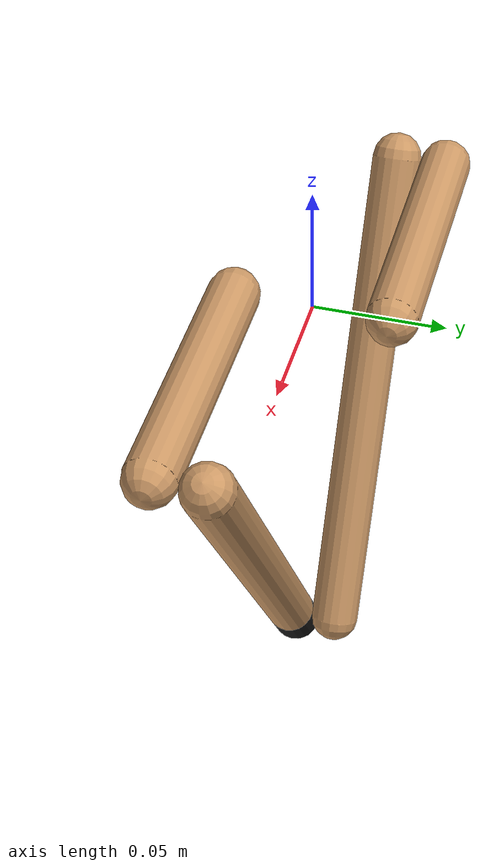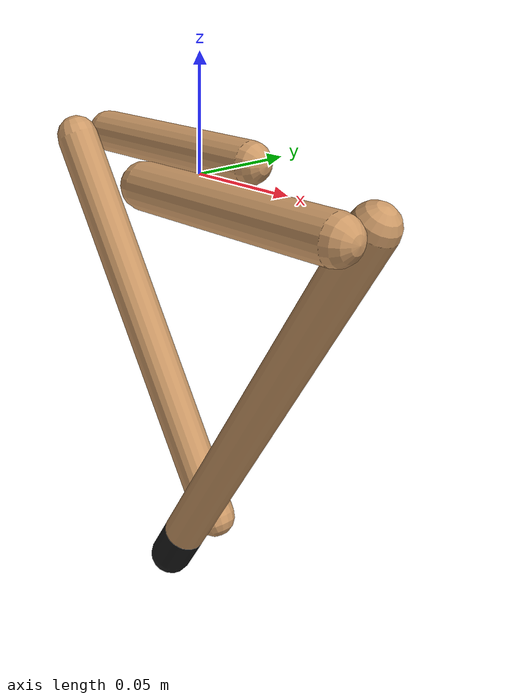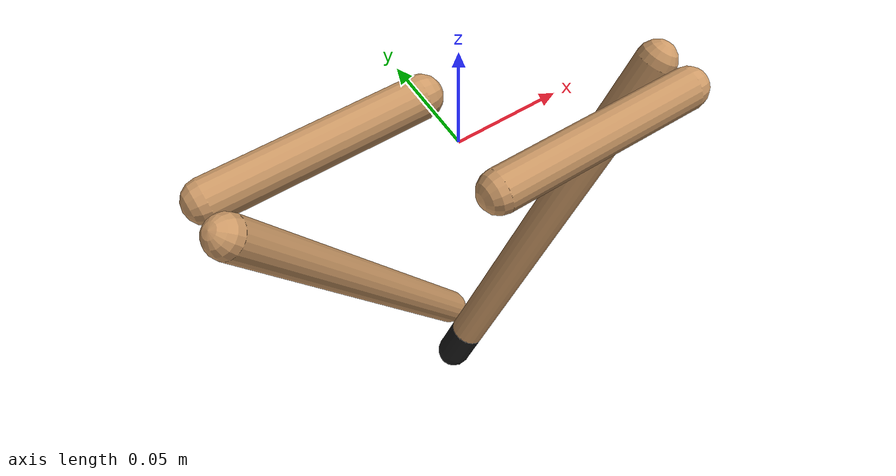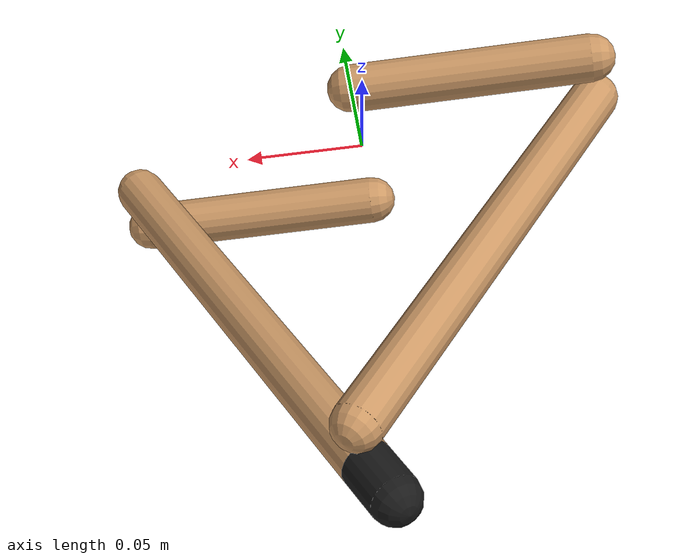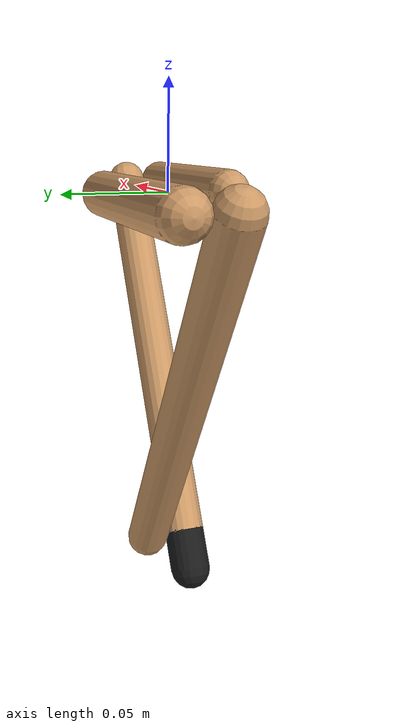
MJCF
<mujoco model="snapper">
	<compiler coordinate="global"/>

	<default>
		<geom rgba=".8 .6 .4 1"/>
	</default>

	<asset>
		<texture type="skybox" builtin="gradient" rgb1="1 1 1" rgb2=".6 .8 1" width="256" height="256"/>
	</asset>

	<worldbody>
		<light pos="0 1 1" dir="0 -1 -1" diffuse="1 1 1"/>

		<!---- Defines the first leg (hip, femur, knee, tibia) ---->
		<body name="leg1">
			<geom  name="femur1" type="capsule" fromto="0 -0.03 0  0.1 -0.03 0" size="0.01"/>
			<joint name="hip1" type="hinge" pos="0 -0.04 0" axis="0 1 0"/>

			<body name="tibia1">
				<geom type="capsule" fromto="0.1 -0.01 0   0 -0.01 -0.1732" size="0.01" />
				<joint name="knee1" type="hinge" pos="0.1 -0.02 0" axis="0 1 0"/>

				<body>
					<geom name="foot" type="capsule" fromto="0 -0.01 -0.1732  -0.01 -0.01 -0.1905" size="0.01"  rgba="0.1 0.1 0.1 1"/>
				</body>
			</body>
		</body>

		<!---- Defines the second leg (hip, femur, knee, tibia) ---->
		<body name="leg2">
			<geom  name="femur2" type="capsule" fromto="0 0.03 0 -0.1 0.03 0" size="0.01"/>
			<joint name="hip2"   type="hinge" pos="0 0.03 0" axis="0 1 0"/>

			<body name="tibia2">
				<geom type="capsule" fromto="-0.1 0.01 0 0 0.01 -0.1732" size="0.01"/>
				<joint name="knee2"  type="hinge" pos="-0.1 0.01 0" axis="0 1 0"/>
			</body>
		</body>

		<geom type="plane" pos="0 0 -1"  size="1 1 0.1"/>

	</worldbody>

	<equality>
		<connect body1="tibia1" body2="tibia2" anchor="0 0 -0.1732" />
	</equality>

	<actuator>
		<position name="u1" kp="0.01" joint="hip1" />
		<velocity name="u2" kv="0.01" joint="hip1" />

		<position name="u3" kp="0.01" joint="hip2" />
		<velocity name="u4" kv="0.01" joint="hip2" />
	</actuator>

</mujoco>
